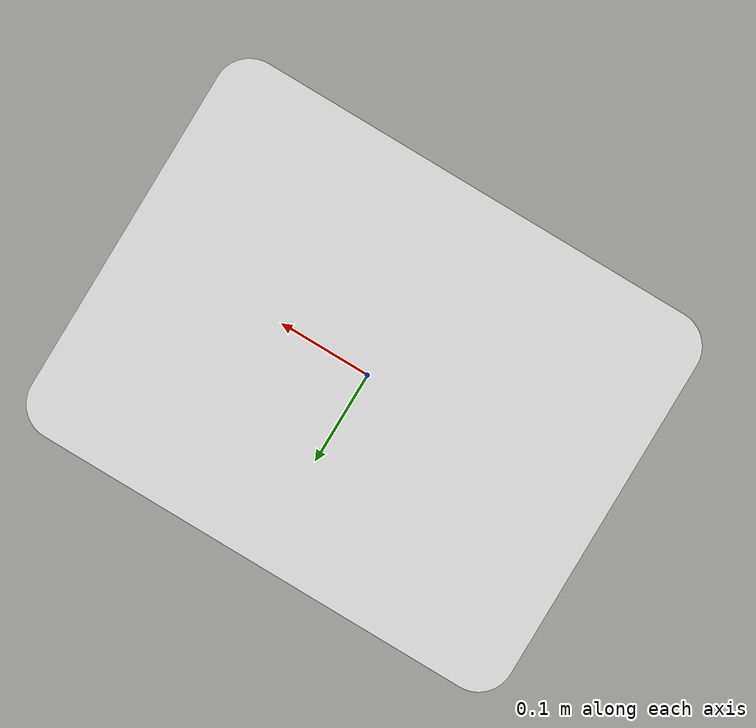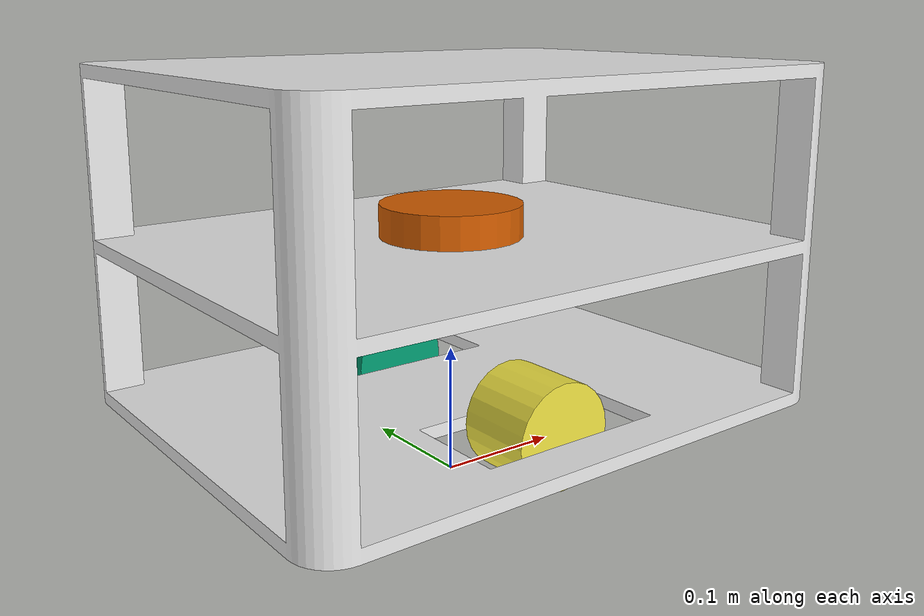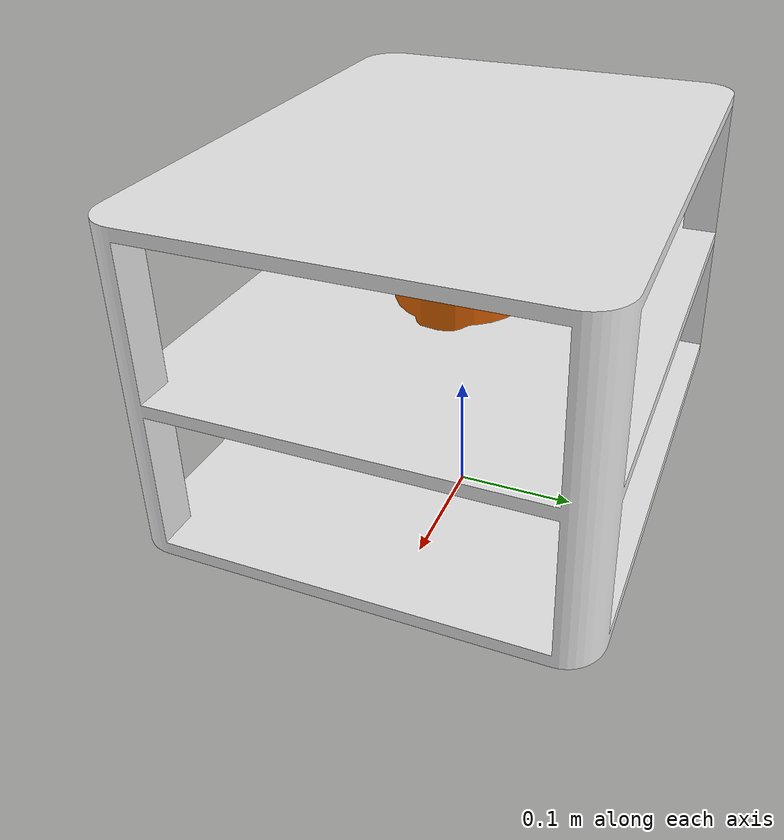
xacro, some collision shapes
<?xml version="1.0" ?>
<robot name="mca_pr2" xmlns:xacro="http://ros.org/wiki/xacro">
  <xacro:include filename="$(find mca_pr2_description)/urdf/common_properties.xacro"/>

  <link name="base_footprint"/>

  <joint name="base_joint" type="fixed">
    <parent link="base_footprint"/>
    <child link="base_link" />
    <origin xyz="0 0.0 0.01" rpy="0 0 0"/>
  </joint>

  <link name="base_link">
    <visual>
      <origin xyz="-0.2245 -0.175 0.05" rpy="1.57 0 1.57"/>
      <geometry>
        <mesh filename="package://mca_pr2_description/meshes/bases/pr2_base.stl" scale="0.001 0.001 0.001"/>
      </geometry>
      <material name="white"/>
    </visual>

    <collision>
      <origin xyz="0 0.0 0.4" rpy="0 0 1.57"/>
      <geometry>
        <box size="0.345 0.45 0.7"/>
      </geometry>
    </collision>

    <inertial>
      <origin xyz="-0.2245 -0.175 0" rpy="1.57 0 1.57"/>
      <mass value="8.2573504e-01"/>
      <inertia ixx="2.2124416e-03" ixy="-1.2294101e-05" ixz="3.4938785e-05"
               iyy="2.1193702e-03" iyz="-5.0120904e-06"
               izz="2.0064271e-03" />
    </inertial>
  </link>

  <joint name="wheel_left_joint" type="continuous">
    <parent link="base_link"/>
    <child link="wheel_left_link"/>
    <origin xyz="0 0.1 0.06" rpy="-1.57 0 0 "/>
    <axis xyz="0 0 1"/>
  </joint>

  <link name="wheel_left_link">
    <visual>
      <origin xyz="0 0 0" rpy="0 0 1.57"/>
      <geometry>
        <cylinder length="0.06" radius="0.0395"/>
      </geometry>
      <material name="dark"/>
    </visual>

    <collision>
      <origin xyz="0 0 0" rpy="0 0 1.57"/>
      <geometry>
        <cylinder length="0.07" radius="0.075"/>
      </geometry>
    </collision>

    <inertial>
      <origin xyz="0 0 0" />
      <mass value="2.8498940e-02" />
      <inertia ixx="1.1175580e-05" ixy="-4.2369783e-11" ixz="-5.9381719e-09"
               iyy="1.1192413e-05" iyz="-1.4400107e-11"
               izz="2.0712558e-05" />
      </inertial>
  </link>

<joint name="wheel_right_joint" type="continuous">
    <parent link="base_link"/>
    <child link="wheel_right_link"/>
    <origin xyz="0 -0.1 0.06" rpy="-1.57 0 0"/>
    <axis xyz="0 0 1"/>
  </joint>

  <link name="wheel_right_link">
    <visual>
      <origin xyz="0 0 0" rpy="0 0 1.57"/>
      <geometry>
        <cylinder length="0.06" radius="0.0395"/>
      </geometry>
      <material name="dark"/>
    </visual>

    <collision>
      <origin xyz="0 0 0" rpy="0 0 1.57"/>
      <geometry>
        <cylinder length="0.07" radius="0.075"/>
      </geometry>
    </collision>

    <inertial>
      <origin xyz="0 0 0" />
      <mass value="2.8498940e-02" />
      <inertia ixx="1.1175580e-05" ixy="-4.2369783e-11" ixz="-5.9381719e-09"
               iyy="1.1192413e-05" iyz="-1.4400107e-11"
               izz="2.0712558e-05" />
      </inertial>
  </link>

  <joint name="imu_joint" type="fixed">
    <parent link="base_link"/>
    <child link="imu_link"/>
    <origin xyz="-0.032 0 0.068" rpy="0 0 0"/>
  </joint>

  <link name="imu_link"/>

  <joint name="scan_joint" type="fixed">
    <parent link="base_link"/>
    <child link="base_scan"/>
    <origin xyz="0 0 0.19" rpy="0 0 0"/>
  </joint>

  <link name="base_scan">
    <visual>
      <origin xyz="0 0 0" rpy="0 0 0"/>
      <geometry>
        <mesh filename="package://mca_pr2_description/meshes/sensors/lds.stl" scale="0.001 0.001 0.001"/>
      </geometry>
      <material name="dark"/>
    </visual>

    <collision>
      <origin xyz="0 0 0" rpy="0 0 0"/>
      <geometry>
        <cylinder length="0.0315" radius="0.055"/>
      </geometry>
    </collision>

    <inertial>
      <mass value="0.114" />
      <origin xyz="0 0 0" />
      <inertia ixx="0.001" ixy="0.0" ixz="0.0"
               iyy="0.001" iyz="0.0"
               izz="0.001" />
    </inertial>
  </link>
</robot>
